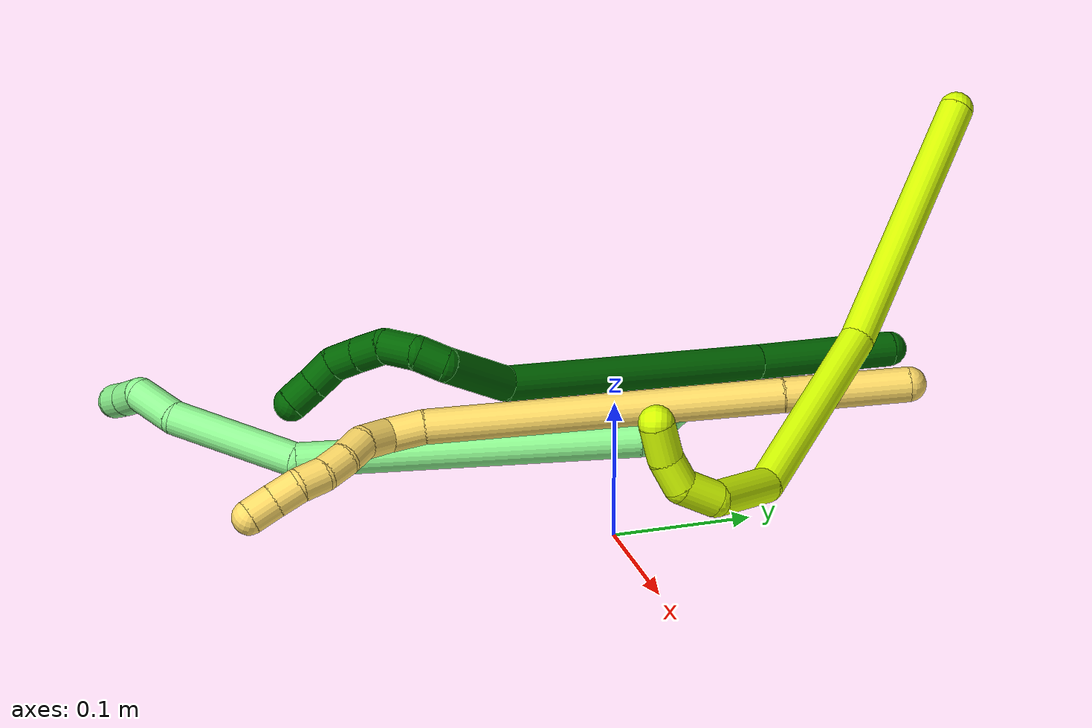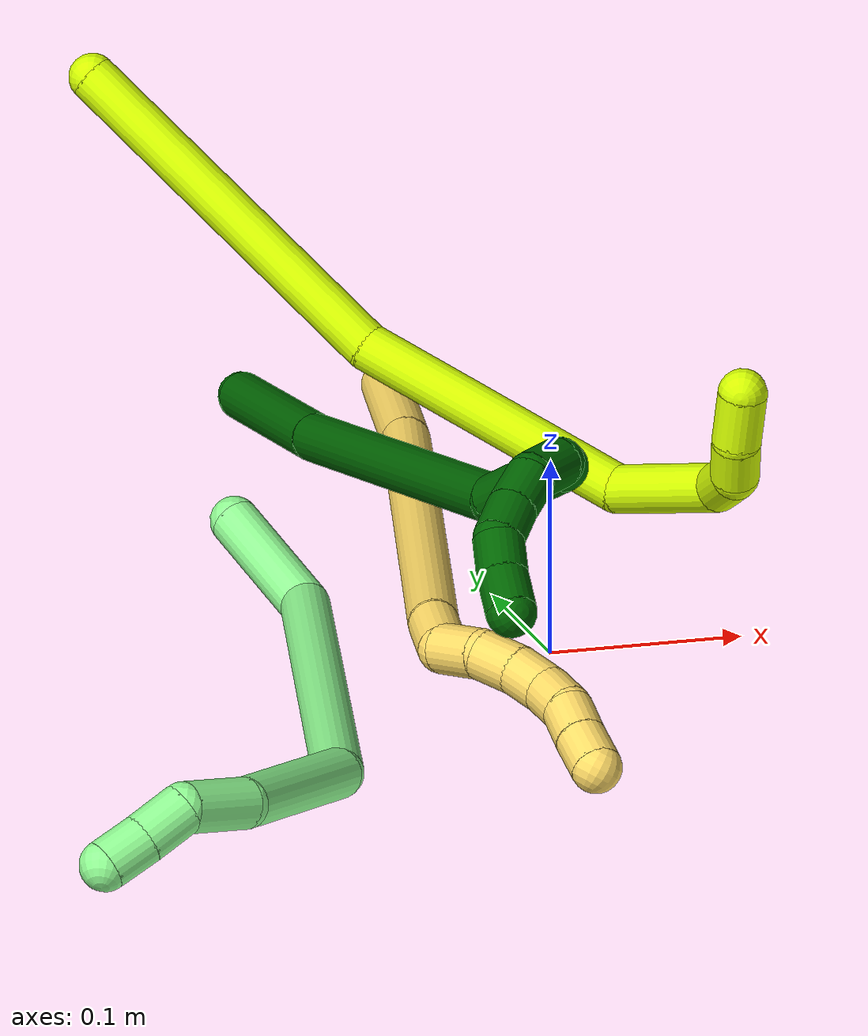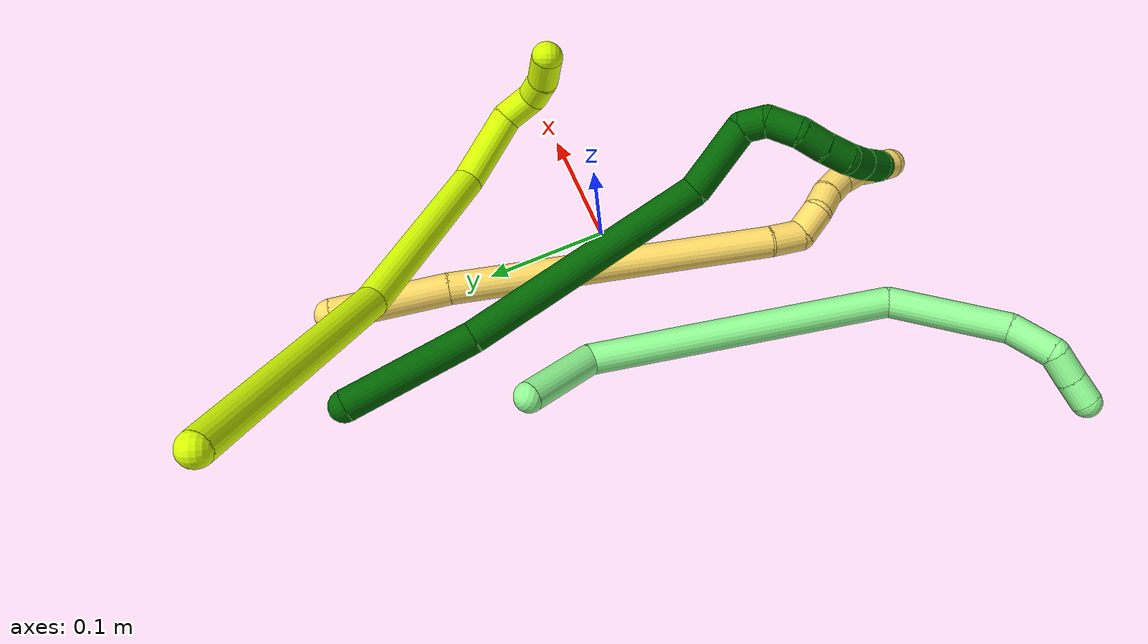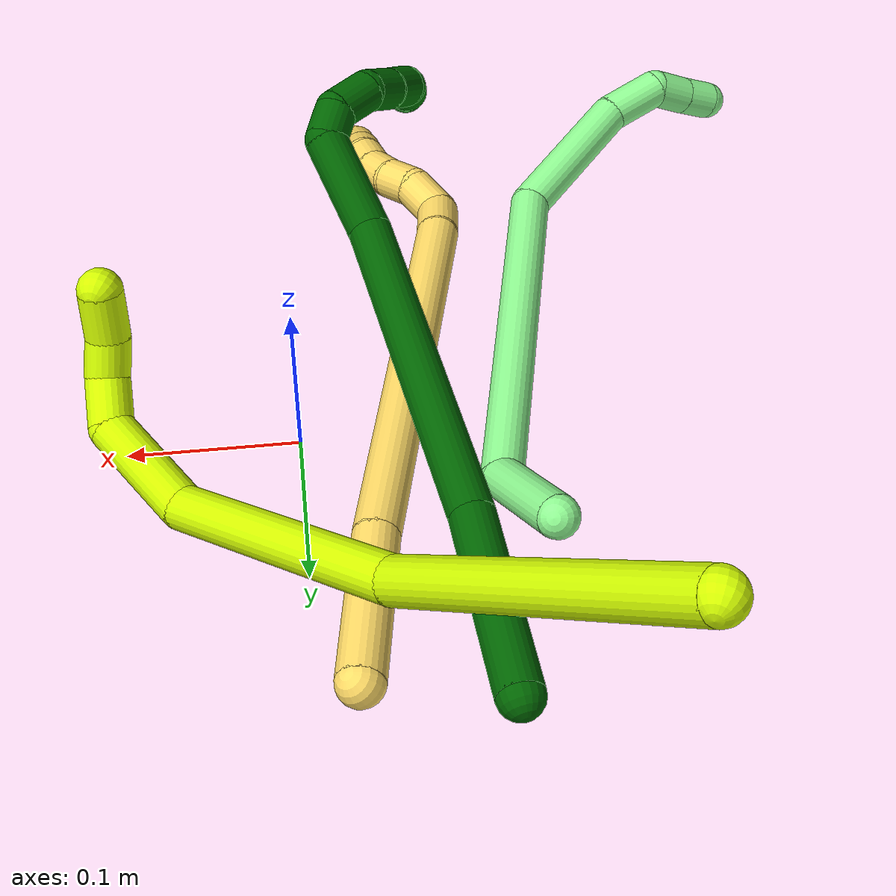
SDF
<sdf version="1.7">
 <world name="default">
  <model name="5">
   <static>0</static>
   <link name="5">
    <collision name="collision-cylinder-e_1_1_4">
     <pose>-0.018767 -0.039751 0.010308 1.31706 -0.428666 -0.333725</pose>
     <geometry><cylinder><radius>0.0125</radius><length>0.090302</length></cylinder></geometry>
     <surface>
      <friction><ode><mu>1.16</mu><mu2>1.16</mu2><slip1>0</slip1><slip2>0</slip2></ode></friction>
      <contact><ode><kp>1e+06</kp><kd>1</kd><max_vel>0</max_vel><min_depth>0.001</min_depth></ode></contact>
     </surface>
    </collision>
    <visual name="visual-cylinder-e_1_1_4">
     <pose>-0.018767 -0.039751 0.010308 1.31706 -0.428666 -0.333725</pose>
     <geometry><cylinder><radius>0.0125</radius><length>0.090302</length></cylinder></geometry>
     <material><ambient>1 0.858824 0.4 1</ambient></material>
    </visual>
    <collision name="collision-cylinder-e_2_4_5">
     <pose>-0.084832 -0.191981 0.056956 1.25831 -0.380624 -0.278603</pose>
     <geometry><cylinder><radius>0.0125</radius><length>0.25463</length></cylinder></geometry>
     <surface>
      <friction><ode><mu>1.16</mu><mu2>1.16</mu2><slip1>0</slip1><slip2>0</slip2></ode></friction>
      <contact><ode><kp>1e+06</kp><kd>1</kd><max_vel>0</max_vel><min_depth>0.001</min_depth></ode></contact>
     </surface>
    </collision>
    <visual name="visual-cylinder-e_2_4_5">
     <pose>-0.084832 -0.191981 0.056956 1.25831 -0.380624 -0.278603</pose>
     <geometry><cylinder><radius>0.0125</radius><length>0.25463</length></cylinder></geometry>
     <material><ambient>1 0.858824 0.4 1</ambient></material>
    </visual>
    <collision name="collision-cylinder-e_3_5_6">
     <pose>-0.138821 -0.315056 0.097425 1.19908 -0.531822 -0.368085</pose>
     <geometry><cylinder><radius>0.0125</radius><length>0.02639</length></cylinder></geometry>
     <surface>
      <friction><ode><mu>1.16</mu><mu2>1.16</mu2><slip1>0</slip1><slip2>0</slip2></ode></friction>
      <contact><ode><kp>1e+06</kp><kd>1</kd><max_vel>0</max_vel><min_depth>0.001</min_depth></ode></contact>
     </surface>
    </collision>
    <visual name="visual-cylinder-e_3_5_6">
     <pose>-0.138821 -0.315056 0.097425 1.19908 -0.531822 -0.368085</pose>
     <geometry><cylinder><radius>0.0125</radius><length>0.02639</length></cylinder></geometry>
     <material><ambient>1 0.858824 0.4 1</ambient></material>
    </visual>
    <collision name="collision-cylinder-e_4_6_7">
     <pose>-0.155671 -0.33287 0.098403 1.98261 -0.91123 -1.28538</pose>
     <geometry><cylinder><radius>0.0125</radius><length>0.025709</length></cylinder></geometry>
     <surface>
      <friction><ode><mu>1.16</mu><mu2>1.16</mu2><slip1>0</slip1><slip2>0</slip2></ode></friction>
      <contact><ode><kp>1e+06</kp><kd>1</kd><max_vel>0</max_vel><min_depth>0.001</min_depth></ode></contact>
     </surface>
    </collision>
    <visual name="visual-cylinder-e_4_6_7">
     <pose>-0.155671 -0.33287 0.098403 1.98261 -0.91123 -1.28538</pose>
     <geometry><cylinder><radius>0.0125</radius><length>0.025709</length></cylinder></geometry>
     <material><ambient>1 0.858824 0.4 1</ambient></material>
    </visual>
    <collision name="collision-cylinder-e_5_7_8">
     <pose>-0.176044 -0.343331 0.094551 1.78307 -1.25685 -1.46564</pose>
     <geometry><cylinder><radius>0.0125</radius><length>0.021481</length></cylinder></geometry>
     <surface>
      <friction><ode><mu>1.16</mu><mu2>1.16</mu2><slip1>0</slip1><slip2>0</slip2></ode></friction>
      <contact><ode><kp>1e+06</kp><kd>1</kd><max_vel>0</max_vel><min_depth>0.001</min_depth></ode></contact>
     </surface>
    </collision>
    <visual name="visual-cylinder-e_5_7_8">
     <pose>-0.176044 -0.343331 0.094551 1.78307 -1.25685 -1.46564</pose>
     <geometry><cylinder><radius>0.0125</radius><length>0.021481</length></cylinder></geometry>
     <material><ambient>1 0.858824 0.4 1</ambient></material>
    </visual>
    <collision name="collision-cylinder-e_6_8_9">
     <pose>-0.195462 -0.351118 0.094733 1.37947 -1.10466 -0.940682</pose>
     <geometry><cylinder><radius>0.0125</radius><length>0.020602</length></cylinder></geometry>
     <surface>
      <friction><ode><mu>1.16</mu><mu2>1.16</mu2><slip1>0</slip1><slip2>0</slip2></ode></friction>
      <contact><ode><kp>1e+06</kp><kd>1</kd><max_vel>0</max_vel><min_depth>0.001</min_depth></ode></contact>
     </surface>
    </collision>
    <visual name="visual-cylinder-e_6_8_9">
     <pose>-0.195462 -0.351118 0.094733 1.37947 -1.10466 -0.940682</pose>
     <geometry><cylinder><radius>0.0125</radius><length>0.020602</length></cylinder></geometry>
     <material><ambient>1 0.858824 0.4 1</ambient></material>
    </visual>
    <collision name="collision-cylinder-e_7_9_10">
     <pose>-0.21222 -0.36212 0.097298 1.31562 -0.847409 -0.670608</pose>
     <geometry><cylinder><radius>0.0125</radius><length>0.020162</length></cylinder></geometry>
     <surface>
      <friction><ode><mu>1.16</mu><mu2>1.16</mu2><slip1>0</slip1><slip2>0</slip2></ode></friction>
      <contact><ode><kp>1e+06</kp><kd>1</kd><max_vel>0</max_vel><min_depth>0.001</min_depth></ode></contact>
     </surface>
    </collision>
    <visual name="visual-cylinder-e_7_9_10">
     <pose>-0.21222 -0.36212 0.097298 1.31562 -0.847409 -0.670608</pose>
     <geometry><cylinder><radius>0.0125</radius><length>0.020162</length></cylinder></geometry>
     <material><ambient>1 0.858824 0.4 1</ambient></material>
    </visual>
    <collision name="collision-cylinder-e_8_10_11">
     <pose>-0.226746 -0.37436 0.103525 0.904944 -0.758513 -0.382736</pose>
     <geometry><cylinder><radius>0.0125</radius><length>0.020263</length></cylinder></geometry>
     <surface>
      <friction><ode><mu>1.16</mu><mu2>1.16</mu2><slip1>0</slip1><slip2>0</slip2></ode></friction>
      <contact><ode><kp>1e+06</kp><kd>1</kd><max_vel>0</max_vel><min_depth>0.001</min_depth></ode></contact>
     </surface>
    </collision>
    <visual name="visual-cylinder-e_8_10_11">
     <pose>-0.226746 -0.37436 0.103525 0.904944 -0.758513 -0.382736</pose>
     <geometry><cylinder><radius>0.0125</radius><length>0.020263</length></cylinder></geometry>
     <material><ambient>1 0.858824 0.4 1</ambient></material>
    </visual>
    <collision name="collision-cylinder-e_9_11_2">
     <pose>-0.241132 -0.385746 0.112341 0.919193 -0.811073 -0.418766</pose>
     <geometry><cylinder><radius>0.0125</radius><length>0.020461</length></cylinder></geometry>
     <surface>
      <friction><ode><mu>1.16</mu><mu2>1.16</mu2><slip1>0</slip1><slip2>0</slip2></ode></friction>
      <contact><ode><kp>1e+06</kp><kd>1</kd><max_vel>0</max_vel><min_depth>0.001</min_depth></ode></contact>
     </surface>
    </collision>
    <visual name="visual-cylinder-e_9_11_2">
     <pose>-0.241132 -0.385746 0.112341 0.919193 -0.811073 -0.418766</pose>
     <geometry><cylinder><radius>0.0125</radius><length>0.020461</length></cylinder></geometry>
     <material><ambient>1 0.858824 0.4 1</ambient></material>
    </visual>
    <collision name="collision-sphere-2">
     <pose>-0.248549 -0.391348 0.116614 0 -0 0</pose>
     <geometry><sphere><radius>0.0125</radius></sphere></geometry>
     <surface>
      <friction><ode><mu>1.16</mu><mu2>1.16</mu2><slip1>0</slip1><slip2>0</slip2></ode></friction>
      <contact><ode><kp>1e+06</kp><kd>1</kd><max_vel>0</max_vel><min_depth>0.001</min_depth></ode></contact>
     </surface>
    </collision>
    <visual name="visual-sphere-2">
     <pose>-0.248549 -0.391348 0.116614 0 -0 0</pose>
     <geometry><sphere><radius>0.0125</radius></sphere></geometry>
     <material><ambient>1 0.858824 0.4 1</ambient></material>
    </visual>
    <collision name="collision-sphere-11">
     <pose>-0.233715 -0.380144 0.108068 0 -0 0</pose>
     <geometry><sphere><radius>0.0125</radius></sphere></geometry>
     <surface>
      <friction><ode><mu>1.16</mu><mu2>1.16</mu2><slip1>0</slip1><slip2>0</slip2></ode></friction>
      <contact><ode><kp>1e+06</kp><kd>1</kd><max_vel>0</max_vel><min_depth>0.001</min_depth></ode></contact>
     </surface>
    </collision>
    <visual name="visual-sphere-11">
     <pose>-0.233715 -0.380144 0.108068 0 -0 0</pose>
     <geometry><sphere><radius>0.0125</radius></sphere></geometry>
     <material><ambient>1 0.858824 0.4 1</ambient></material>
    </visual>
    <collision name="collision-sphere-10">
     <pose>-0.219777 -0.368577 0.098982 0 -0 0</pose>
     <geometry><sphere><radius>0.0125</radius></sphere></geometry>
     <surface>
      <friction><ode><mu>1.16</mu><mu2>1.16</mu2><slip1>0</slip1><slip2>0</slip2></ode></friction>
      <contact><ode><kp>1e+06</kp><kd>1</kd><max_vel>0</max_vel><min_depth>0.001</min_depth></ode></contact>
     </surface>
    </collision>
    <visual name="visual-sphere-10">
     <pose>-0.219777 -0.368577 0.098982 0 -0 0</pose>
     <geometry><sphere><radius>0.0125</radius></sphere></geometry>
     <material><ambient>1 0.858824 0.4 1</ambient></material>
    </visual>
    <collision name="collision-sphere-9">
     <pose>-0.204664 -0.355664 0.095613 0 -0 0</pose>
     <geometry><sphere><radius>0.0125</radius></sphere></geometry>
     <surface>
      <friction><ode><mu>1.16</mu><mu2>1.16</mu2><slip1>0</slip1><slip2>0</slip2></ode></friction>
      <contact><ode><kp>1e+06</kp><kd>1</kd><max_vel>0</max_vel><min_depth>0.001</min_depth></ode></contact>
     </surface>
    </collision>
    <visual name="visual-sphere-9">
     <pose>-0.204664 -0.355664 0.095613 0 -0 0</pose>
     <geometry><sphere><radius>0.0125</radius></sphere></geometry>
     <material><ambient>1 0.858824 0.4 1</ambient></material>
    </visual>
    <collision name="collision-sphere-4">
     <pose>-0.037535 -0.079502 0.020616 0 -0 0</pose>
     <geometry><sphere><radius>0.0125</radius></sphere></geometry>
     <surface>
      <friction><ode><mu>1.16</mu><mu2>1.16</mu2><slip1>0</slip1><slip2>0</slip2></ode></friction>
      <contact><ode><kp>1e+06</kp><kd>1</kd><max_vel>0</max_vel><min_depth>0.001</min_depth></ode></contact>
     </surface>
    </collision>
    <visual name="visual-sphere-4">
     <pose>-0.037535 -0.079502 0.020616 0 -0 0</pose>
     <geometry><sphere><radius>0.0125</radius></sphere></geometry>
     <material><ambient>1 0.858824 0.4 1</ambient></material>
    </visual>
    <collision name="collision-sphere-1">
     <geometry><sphere><radius>0.0125</radius></sphere></geometry>
     <surface>
      <friction><ode><mu>1.16</mu><mu2>1.16</mu2><slip1>0</slip1><slip2>0</slip2></ode></friction>
      <contact><ode><kp>1e+06</kp><kd>1</kd><max_vel>0</max_vel><min_depth>0.001</min_depth></ode></contact>
     </surface>
    </collision>
    <visual name="visual-sphere-1">
     <geometry><sphere><radius>0.0125</radius></sphere></geometry>
     <material><ambient>1 0.858824 0.4 1</ambient></material>
    </visual>
    <collision name="collision-sphere-8">
     <pose>-0.18626 -0.346573 0.093853 0 -0 0</pose>
     <geometry><sphere><radius>0.0125</radius></sphere></geometry>
     <surface>
      <friction><ode><mu>1.16</mu><mu2>1.16</mu2><slip1>0</slip1><slip2>0</slip2></ode></friction>
      <contact><ode><kp>1e+06</kp><kd>1</kd><max_vel>0</max_vel><min_depth>0.001</min_depth></ode></contact>
     </surface>
    </collision>
    <visual name="visual-sphere-8">
     <pose>-0.18626 -0.346573 0.093853 0 -0 0</pose>
     <geometry><sphere><radius>0.0125</radius></sphere></geometry>
     <material><ambient>1 0.858824 0.4 1</ambient></material>
    </visual>
    <collision name="collision-sphere-5">
     <pose>-0.13213 -0.30446 0.093295 0 -0 0</pose>
     <geometry><sphere><radius>0.0125</radius></sphere></geometry>
     <surface>
      <friction><ode><mu>1.16</mu><mu2>1.16</mu2><slip1>0</slip1><slip2>0</slip2></ode></friction>
      <contact><ode><kp>1e+06</kp><kd>1</kd><max_vel>0</max_vel><min_depth>0.001</min_depth></ode></contact>
     </surface>
    </collision>
    <visual name="visual-sphere-5">
     <pose>-0.13213 -0.30446 0.093295 0 -0 0</pose>
     <geometry><sphere><radius>0.0125</radius></sphere></geometry>
     <material><ambient>1 0.858824 0.4 1</ambient></material>
    </visual>
    <collision name="collision-sphere-6">
     <pose>-0.145513 -0.325652 0.101556 0 -0 0</pose>
     <geometry><sphere><radius>0.0125</radius></sphere></geometry>
     <surface>
      <friction><ode><mu>1.16</mu><mu2>1.16</mu2><slip1>0</slip1><slip2>0</slip2></ode></friction>
      <contact><ode><kp>1e+06</kp><kd>1</kd><max_vel>0</max_vel><min_depth>0.001</min_depth></ode></contact>
     </surface>
    </collision>
    <visual name="visual-sphere-6">
     <pose>-0.145513 -0.325652 0.101556 0 -0 0</pose>
     <geometry><sphere><radius>0.0125</radius></sphere></geometry>
     <material><ambient>1 0.858824 0.4 1</ambient></material>
    </visual>
    <collision name="collision-sphere-7">
     <pose>-0.165829 -0.340089 0.09525 0 -0 0</pose>
     <geometry><sphere><radius>0.0125</radius></sphere></geometry>
     <surface>
      <friction><ode><mu>1.16</mu><mu2>1.16</mu2><slip1>0</slip1><slip2>0</slip2></ode></friction>
      <contact><ode><kp>1e+06</kp><kd>1</kd><max_vel>0</max_vel><min_depth>0.001</min_depth></ode></contact>
     </surface>
    </collision>
    <visual name="visual-sphere-7">
     <pose>-0.165829 -0.340089 0.09525 0 -0 0</pose>
     <geometry><sphere><radius>0.0125</radius></sphere></geometry>
     <material><ambient>1 0.858824 0.4 1</ambient></material>
    </visual>
    <inertial>
     <pose>-0.105154 -0.213468 0.06175 0 -0 0</pose>
     <mass>0.5</mass>
     <inertia>
      <ixx>0.000901</ixx>
      <ixy>0</ixy>
      <ixz>0</ixz>
      <iyy>0.000169</iyy>
      <iyz>0</iyz>
      <izz>0.001849</izz>
     </inertia>
    </inertial>
   </link>
   <pose>-0.020472 0.22538 0.077438 -2.73564 -0.3995 2.52712</pose>
  </model>
  <model name="6">
   <static>0</static>
   <link name="6">
    <collision name="collision-cylinder-e_1_1_4">
     <pose>0.012757 -0.003194 0.050807 0.062777 0.245536 0.007748</pose>
     <geometry><cylinder><radius>0.0125</radius><length>0.104963</length></cylinder></geometry>
     <surface>
      <friction><ode><mu>1.16</mu><mu2>1.16</mu2><slip1>0</slip1><slip2>0</slip2></ode></friction>
      <contact><ode><kp>1e+06</kp><kd>1</kd><max_vel>0</max_vel><min_depth>0.001</min_depth></ode></contact>
     </surface>
    </collision>
    <visual name="visual-cylinder-e_1_1_4">
     <pose>0.012757 -0.003194 0.050807 0.062777 0.245536 0.007748</pose>
     <geometry><cylinder><radius>0.0125</radius><length>0.104963</length></cylinder></geometry>
     <material><ambient>0 0.392157 0.003922 1</ambient></material>
    </visual>
    <collision name="collision-cylinder-e_2_4_5">
     <pose>0.044854 -0.004717 0.200811 -0.016834 0.192524 -0.001626</pose>
     <geometry><cylinder><radius>0.0125</radius><length>0.202157</length></cylinder></geometry>
     <surface>
      <friction><ode><mu>1.16</mu><mu2>1.16</mu2><slip1>0</slip1><slip2>0</slip2></ode></friction>
      <contact><ode><kp>1e+06</kp><kd>1</kd><max_vel>0</max_vel><min_depth>0.001</min_depth></ode></contact>
     </surface>
    </collision>
    <visual name="visual-cylinder-e_2_4_5">
     <pose>0.044854 -0.004717 0.200811 -0.016834 0.192524 -0.001626</pose>
     <geometry><cylinder><radius>0.0125</radius><length>0.202157</length></cylinder></geometry>
     <material><ambient>0 0.392157 0.003922 1</ambient></material>
    </visual>
    <collision name="collision-cylinder-e_3_5_6">
     <pose>0.057712 0.002513 0.329209 -0.188154 -0.214719 0.020337</pose>
     <geometry><cylinder><radius>0.0125</radius><length>0.060848</length></cylinder></geometry>
     <surface>
      <friction><ode><mu>1.16</mu><mu2>1.16</mu2><slip1>0</slip1><slip2>0</slip2></ode></friction>
      <contact><ode><kp>1e+06</kp><kd>1</kd><max_vel>0</max_vel><min_depth>0.001</min_depth></ode></contact>
     </surface>
    </collision>
    <visual name="visual-cylinder-e_3_5_6">
     <pose>0.057712 0.002513 0.329209 -0.188154 -0.214719 0.020337</pose>
     <geometry><cylinder><radius>0.0125</radius><length>0.060848</length></cylinder></geometry>
     <material><ambient>0 0.392157 0.003922 1</ambient></material>
    </visual>
    <collision name="collision-cylinder-e_4_6_7">
     <pose>0.050324 0.002866 0.367304 0.529611 -0.087571 -0.023761</pose>
     <geometry><cylinder><radius>0.0125</radius><length>0.020692</length></cylinder></geometry>
     <surface>
      <friction><ode><mu>1.16</mu><mu2>1.16</mu2><slip1>0</slip1><slip2>0</slip2></ode></friction>
      <contact><ode><kp>1e+06</kp><kd>1</kd><max_vel>0</max_vel><min_depth>0.001</min_depth></ode></contact>
     </surface>
    </collision>
    <visual name="visual-cylinder-e_4_6_7">
     <pose>0.050324 0.002866 0.367304 0.529611 -0.087571 -0.023761</pose>
     <geometry><cylinder><radius>0.0125</radius><length>0.020692</length></cylinder></geometry>
     <material><ambient>0 0.392157 0.003922 1</ambient></material>
    </visual>
    <collision name="collision-cylinder-e_5_7_8">
     <pose>0.052536 -0.013262 0.382983 1.01489 0.237796 0.132648</pose>
     <geometry><cylinder><radius>0.0125</radius><length>0.026459</length></cylinder></geometry>
     <surface>
      <friction><ode><mu>1.16</mu><mu2>1.16</mu2><slip1>0</slip1><slip2>0</slip2></ode></friction>
      <contact><ode><kp>1e+06</kp><kd>1</kd><max_vel>0</max_vel><min_depth>0.001</min_depth></ode></contact>
     </surface>
    </collision>
    <visual name="visual-cylinder-e_5_7_8">
     <pose>0.052536 -0.013262 0.382983 1.01489 0.237796 0.132648</pose>
     <geometry><cylinder><radius>0.0125</radius><length>0.026459</length></cylinder></geometry>
     <material><ambient>0 0.392157 0.003922 1</ambient></material>
    </visual>
    <collision name="collision-cylinder-e_6_8_9">
     <pose>0.06286 -0.031729 0.393962 1.06349 0.69564 0.420263</pose>
     <geometry><cylinder><radius>0.0125</radius><length>0.022493</length></cylinder></geometry>
     <surface>
      <friction><ode><mu>1.16</mu><mu2>1.16</mu2><slip1>0</slip1><slip2>0</slip2></ode></friction>
      <contact><ode><kp>1e+06</kp><kd>1</kd><max_vel>0</max_vel><min_depth>0.001</min_depth></ode></contact>
     </surface>
    </collision>
    <visual name="visual-cylinder-e_6_8_9">
     <pose>0.06286 -0.031729 0.393962 1.06349 0.69564 0.420263</pose>
     <geometry><cylinder><radius>0.0125</radius><length>0.022493</length></cylinder></geometry>
     <material><ambient>0 0.392157 0.003922 1</ambient></material>
    </visual>
    <collision name="collision-cylinder-e_7_9_10">
     <pose>0.077275 -0.045759 0.40299 0.930195 0.727931 0.377761</pose>
     <geometry><cylinder><radius>0.0125</radius><length>0.021664</length></cylinder></geometry>
     <surface>
      <friction><ode><mu>1.16</mu><mu2>1.16</mu2><slip1>0</slip1><slip2>0</slip2></ode></friction>
      <contact><ode><kp>1e+06</kp><kd>1</kd><max_vel>0</max_vel><min_depth>0.001</min_depth></ode></contact>
     </surface>
    </collision>
    <visual name="visual-cylinder-e_7_9_10">
     <pose>0.077275 -0.045759 0.40299 0.930195 0.727931 0.377761</pose>
     <geometry><cylinder><radius>0.0125</radius><length>0.021664</length></cylinder></geometry>
     <material><ambient>0 0.392157 0.003922 1</ambient></material>
    </visual>
    <collision name="collision-cylinder-e_8_10_11">
     <pose>0.093395 -0.053844 0.41225 0.347111 1.08493 0.210579</pose>
     <geometry><cylinder><radius>0.0125</radius><length>0.020161</length></cylinder></geometry>
     <surface>
      <friction><ode><mu>1.16</mu><mu2>1.16</mu2><slip1>0</slip1><slip2>0</slip2></ode></friction>
      <contact><ode><kp>1e+06</kp><kd>1</kd><max_vel>0</max_vel><min_depth>0.001</min_depth></ode></contact>
     </surface>
    </collision>
    <visual name="visual-cylinder-e_8_10_11">
     <pose>0.093395 -0.053844 0.41225 0.347111 1.08493 0.210579</pose>
     <geometry><cylinder><radius>0.0125</radius><length>0.020161</length></cylinder></geometry>
     <material><ambient>0 0.392157 0.003922 1</ambient></material>
    </visual>
    <collision name="collision-cylinder-e_9_11_2">
     <pose>0.110931 -0.056439 0.422188 0.178345 0.994701 0.096999</pose>
     <geometry><cylinder><radius>0.0125</radius><length>0.020563</length></cylinder></geometry>
     <surface>
      <friction><ode><mu>1.16</mu><mu2>1.16</mu2><slip1>0</slip1><slip2>0</slip2></ode></friction>
      <contact><ode><kp>1e+06</kp><kd>1</kd><max_vel>0</max_vel><min_depth>0.001</min_depth></ode></contact>
     </surface>
    </collision>
    <visual name="visual-cylinder-e_9_11_2">
     <pose>0.110931 -0.056439 0.422188 0.178345 0.994701 0.096999</pose>
     <geometry><cylinder><radius>0.0125</radius><length>0.020563</length></cylinder></geometry>
     <material><ambient>0 0.392157 0.003922 1</ambient></material>
    </visual>
    <collision name="collision-sphere-2">
     <pose>0.119553 -0.057432 0.4277 0 -0 0</pose>
     <geometry><sphere><radius>0.0125</radius></sphere></geometry>
     <surface>
      <friction><ode><mu>1.16</mu><mu2>1.16</mu2><slip1>0</slip1><slip2>0</slip2></ode></friction>
      <contact><ode><kp>1e+06</kp><kd>1</kd><max_vel>0</max_vel><min_depth>0.001</min_depth></ode></contact>
     </surface>
    </collision>
    <visual name="visual-sphere-2">
     <pose>0.119553 -0.057432 0.4277 0 -0 0</pose>
     <geometry><sphere><radius>0.0125</radius></sphere></geometry>
     <material><ambient>0 0.392157 0.003922 1</ambient></material>
    </visual>
    <collision name="collision-sphere-11">
     <pose>0.102309 -0.055445 0.416676 0 -0 0</pose>
     <geometry><sphere><radius>0.0125</radius></sphere></geometry>
     <surface>
      <friction><ode><mu>1.16</mu><mu2>1.16</mu2><slip1>0</slip1><slip2>0</slip2></ode></friction>
      <contact><ode><kp>1e+06</kp><kd>1</kd><max_vel>0</max_vel><min_depth>0.001</min_depth></ode></contact>
     </surface>
    </collision>
    <visual name="visual-sphere-11">
     <pose>0.102309 -0.055445 0.416676 0 -0 0</pose>
     <geometry><sphere><radius>0.0125</radius></sphere></geometry>
     <material><ambient>0 0.392157 0.003922 1</ambient></material>
    </visual>
    <collision name="collision-sphere-10">
     <pose>0.084481 -0.052242 0.407823 0 -0 0</pose>
     <geometry><sphere><radius>0.0125</radius></sphere></geometry>
     <surface>
      <friction><ode><mu>1.16</mu><mu2>1.16</mu2><slip1>0</slip1><slip2>0</slip2></ode></friction>
      <contact><ode><kp>1e+06</kp><kd>1</kd><max_vel>0</max_vel><min_depth>0.001</min_depth></ode></contact>
     </surface>
    </collision>
    <visual name="visual-sphere-10">
     <pose>0.084481 -0.052242 0.407823 0 -0 0</pose>
     <geometry><sphere><radius>0.0125</radius></sphere></geometry>
     <material><ambient>0 0.392157 0.003922 1</ambient></material>
    </visual>
    <collision name="collision-sphere-9">
     <pose>0.070068 -0.039275 0.398157 0 -0 0</pose>
     <geometry><sphere><radius>0.0125</radius></sphere></geometry>
     <surface>
      <friction><ode><mu>1.16</mu><mu2>1.16</mu2><slip1>0</slip1><slip2>0</slip2></ode></friction>
      <contact><ode><kp>1e+06</kp><kd>1</kd><max_vel>0</max_vel><min_depth>0.001</min_depth></ode></contact>
     </surface>
    </collision>
    <visual name="visual-sphere-9">
     <pose>0.070068 -0.039275 0.398157 0 -0 0</pose>
     <geometry><sphere><radius>0.0125</radius></sphere></geometry>
     <material><ambient>0 0.392157 0.003922 1</ambient></material>
    </visual>
    <collision name="collision-sphere-4">
     <pose>0.025514 -0.006387 0.101615 0 -0 0</pose>
     <geometry><sphere><radius>0.0125</radius></sphere></geometry>
     <surface>
      <friction><ode><mu>1.16</mu><mu2>1.16</mu2><slip1>0</slip1><slip2>0</slip2></ode></friction>
      <contact><ode><kp>1e+06</kp><kd>1</kd><max_vel>0</max_vel><min_depth>0.001</min_depth></ode></contact>
     </surface>
    </collision>
    <visual name="visual-sphere-4">
     <pose>0.025514 -0.006387 0.101615 0 -0 0</pose>
     <geometry><sphere><radius>0.0125</radius></sphere></geometry>
     <material><ambient>0 0.392157 0.003922 1</ambient></material>
    </visual>
    <collision name="collision-sphere-1">
     <geometry><sphere><radius>0.0125</radius></sphere></geometry>
     <surface>
      <friction><ode><mu>1.16</mu><mu2>1.16</mu2><slip1>0</slip1><slip2>0</slip2></ode></friction>
      <contact><ode><kp>1e+06</kp><kd>1</kd><max_vel>0</max_vel><min_depth>0.001</min_depth></ode></contact>
     </surface>
    </collision>
    <visual name="visual-sphere-1">
     <geometry><sphere><radius>0.0125</radius></sphere></geometry>
     <material><ambient>0 0.392157 0.003922 1</ambient></material>
    </visual>
    <collision name="collision-sphere-8">
     <pose>0.055652 -0.024183 0.389768 0 -0 0</pose>
     <geometry><sphere><radius>0.0125</radius></sphere></geometry>
     <surface>
      <friction><ode><mu>1.16</mu><mu2>1.16</mu2><slip1>0</slip1><slip2>0</slip2></ode></friction>
      <contact><ode><kp>1e+06</kp><kd>1</kd><max_vel>0</max_vel><min_depth>0.001</min_depth></ode></contact>
     </surface>
    </collision>
    <visual name="visual-sphere-8">
     <pose>0.055652 -0.024183 0.389768 0 -0 0</pose>
     <geometry><sphere><radius>0.0125</radius></sphere></geometry>
     <material><ambient>0 0.392157 0.003922 1</ambient></material>
    </visual>
    <collision name="collision-sphere-5">
     <pose>0.064194 -0.003047 0.300008 0 -0 0</pose>
     <geometry><sphere><radius>0.0125</radius></sphere></geometry>
     <surface>
      <friction><ode><mu>1.16</mu><mu2>1.16</mu2><slip1>0</slip1><slip2>0</slip2></ode></friction>
      <contact><ode><kp>1e+06</kp><kd>1</kd><max_vel>0</max_vel><min_depth>0.001</min_depth></ode></contact>
     </surface>
    </collision>
    <visual name="visual-sphere-5">
     <pose>0.064194 -0.003047 0.300008 0 -0 0</pose>
     <geometry><sphere><radius>0.0125</radius></sphere></geometry>
     <material><ambient>0 0.392157 0.003922 1</ambient></material>
    </visual>
    <collision name="collision-sphere-6">
     <pose>0.051229 0.008073 0.358409 0 -0 0</pose>
     <geometry><sphere><radius>0.0125</radius></sphere></geometry>
     <surface>
      <friction><ode><mu>1.16</mu><mu2>1.16</mu2><slip1>0</slip1><slip2>0</slip2></ode></friction>
      <contact><ode><kp>1e+06</kp><kd>1</kd><max_vel>0</max_vel><min_depth>0.001</min_depth></ode></contact>
     </surface>
    </collision>
    <visual name="visual-sphere-6">
     <pose>0.051229 0.008073 0.358409 0 -0 0</pose>
     <geometry><sphere><radius>0.0125</radius></sphere></geometry>
     <material><ambient>0 0.392157 0.003922 1</ambient></material>
    </visual>
    <collision name="collision-sphere-7">
     <pose>0.04942 -0.002341 0.376198 0 -0 0</pose>
     <geometry><sphere><radius>0.0125</radius></sphere></geometry>
     <surface>
      <friction><ode><mu>1.16</mu><mu2>1.16</mu2><slip1>0</slip1><slip2>0</slip2></ode></friction>
      <contact><ode><kp>1e+06</kp><kd>1</kd><max_vel>0</max_vel><min_depth>0.001</min_depth></ode></contact>
     </surface>
    </collision>
    <visual name="visual-sphere-7">
     <pose>0.04942 -0.002341 0.376198 0 -0 0</pose>
     <geometry><sphere><radius>0.0125</radius></sphere></geometry>
     <material><ambient>0 0.392157 0.003922 1</ambient></material>
    </visual>
    <inertial>
     <pose>0.047203 -0.010757 0.236556 0 -0 0</pose>
     <mass>0.5</mass>
     <inertia>
      <ixx>0.000821</ixx>
      <ixy>0</ixy>
      <ixz>0</ixz>
      <iyy>0.000823</iyy>
      <iyz>0</iyz>
      <izz>-0.000129</izz>
     </inertia>
    </inertial>
   </link>
   <pose>-0.093292 0.23797 0.073629 -0.220079 1.25723 -1.63068</pose>
  </model>
  <model name="13">
   <static>0</static>
   <link name="13">
    <collision name="collision-cylinder-e_1_1_4">
     <pose>-0.021169 0.005027 0.02513 -0.197449 -0.690398 0.071204</pose>
     <geometry><cylinder><radius>0.0125</radius><length>0.066481</length></cylinder></geometry>
     <surface>
      <friction><ode><mu>1.16</mu><mu2>1.16</mu2><slip1>0</slip1><slip2>0</slip2></ode></friction>
      <contact><ode><kp>1e+06</kp><kd>1</kd><max_vel>0</max_vel><min_depth>0.001</min_depth></ode></contact>
     </surface>
    </collision>
    <visual name="visual-cylinder-e_1_1_4">
     <pose>-0.021169 0.005027 0.02513 -0.197449 -0.690398 0.071204</pose>
     <geometry><cylinder><radius>0.0125</radius><length>0.066481</length></cylinder></geometry>
     <material><ambient>0.564706 0.984314 0.572549 1</ambient></material>
    </visual>
    <collision name="collision-cylinder-e_2_4_5">
     <pose>-0.098043 -0.052842 0.141857 0.601727 -0.464718 -0.146583</pose>
     <geometry><cylinder><radius>0.0125</radius><length>0.248587</length></cylinder></geometry>
     <surface>
      <friction><ode><mu>1.16</mu><mu2>1.16</mu2><slip1>0</slip1><slip2>0</slip2></ode></friction>
      <contact><ode><kp>1e+06</kp><kd>1</kd><max_vel>0</max_vel><min_depth>0.001</min_depth></ode></contact>
     </surface>
    </collision>
    <visual name="visual-cylinder-e_2_4_5">
     <pose>-0.098043 -0.052842 0.141857 0.601727 -0.464718 -0.146583</pose>
     <geometry><cylinder><radius>0.0125</radius><length>0.248587</length></cylinder></geometry>
     <material><ambient>0.564706 0.984314 0.572549 1</ambient></material>
    </visual>
    <collision name="collision-cylinder-e_3_5_6">
     <pose>-0.154016 -0.155324 0.263404 0.923069 -0.0054 -0.002686</pose>
     <geometry><cylinder><radius>0.0125</radius><length>0.099281</length></cylinder></geometry>
     <surface>
      <friction><ode><mu>1.16</mu><mu2>1.16</mu2><slip1>0</slip1><slip2>0</slip2></ode></friction>
      <contact><ode><kp>1e+06</kp><kd>1</kd><max_vel>0</max_vel><min_depth>0.001</min_depth></ode></contact>
     </surface>
    </collision>
    <visual name="visual-cylinder-e_3_5_6">
     <pose>-0.154016 -0.155324 0.263404 0.923069 -0.0054 -0.002686</pose>
     <geometry><cylinder><radius>0.0125</radius><length>0.099281</length></cylinder></geometry>
     <material><ambient>0.564706 0.984314 0.572549 1</ambient></material>
    </visual>
    <collision name="collision-cylinder-e_4_6_7">
     <pose>-0.147958 -0.210812 0.302388 1.05422 0.333006 0.195015</pose>
     <geometry><cylinder><radius>0.0125</radius><length>0.038703</length></cylinder></geometry>
     <surface>
      <friction><ode><mu>1.16</mu><mu2>1.16</mu2><slip1>0</slip1><slip2>0</slip2></ode></friction>
      <contact><ode><kp>1e+06</kp><kd>1</kd><max_vel>0</max_vel><min_depth>0.001</min_depth></ode></contact>
     </surface>
    </collision>
    <visual name="visual-cylinder-e_4_6_7">
     <pose>-0.147958 -0.210812 0.302388 1.05422 0.333006 0.195015</pose>
     <geometry><cylinder><radius>0.0125</radius><length>0.038703</length></cylinder></geometry>
     <material><ambient>0.564706 0.984314 0.572549 1</ambient></material>
    </visual>
    <collision name="collision-cylinder-e_5_7_8">
     <pose>-0.133911 -0.230201 0.320538 0.365381 0.66917 0.128283</pose>
     <geometry><cylinder><radius>0.0125</radius><length>0.024893</length></cylinder></geometry>
     <surface>
      <friction><ode><mu>1.16</mu><mu2>1.16</mu2><slip1>0</slip1><slip2>0</slip2></ode></friction>
      <contact><ode><kp>1e+06</kp><kd>1</kd><max_vel>0</max_vel><min_depth>0.001</min_depth></ode></contact>
     </surface>
    </collision>
    <visual name="visual-cylinder-e_5_7_8">
     <pose>-0.133911 -0.230201 0.320538 0.365381 0.66917 0.128283</pose>
     <geometry><cylinder><radius>0.0125</radius><length>0.024893</length></cylinder></geometry>
     <material><ambient>0.564706 0.984314 0.572549 1</ambient></material>
    </visual>
    <collision name="collision-cylinder-e_6_8_2">
     <pose>-0.119345 -0.23726 0.33753 0.425722 0.669662 0.150118</pose>
     <geometry><cylinder><radius>0.0125</radius><length>0.022056</length></cylinder></geometry>
     <surface>
      <friction><ode><mu>1.16</mu><mu2>1.16</mu2><slip1>0</slip1><slip2>0</slip2></ode></friction>
      <contact><ode><kp>1e+06</kp><kd>1</kd><max_vel>0</max_vel><min_depth>0.001</min_depth></ode></contact>
     </surface>
    </collision>
    <visual name="visual-cylinder-e_6_8_2">
     <pose>-0.119345 -0.23726 0.33753 0.425722 0.669662 0.150118</pose>
     <geometry><cylinder><radius>0.0125</radius><length>0.022056</length></cylinder></geometry>
     <material><ambient>0.564706 0.984314 0.572549 1</ambient></material>
    </visual>
    <collision name="collision-sphere-2">
     <pose>-0.1125 -0.240831 0.345405 0 -0 0</pose>
     <geometry><sphere><radius>0.0125</radius></sphere></geometry>
     <surface>
      <friction><ode><mu>1.16</mu><mu2>1.16</mu2><slip1>0</slip1><slip2>0</slip2></ode></friction>
      <contact><ode><kp>1e+06</kp><kd>1</kd><max_vel>0</max_vel><min_depth>0.001</min_depth></ode></contact>
     </surface>
    </collision>
    <visual name="visual-sphere-2">
     <pose>-0.1125 -0.240831 0.345405 0 -0 0</pose>
     <geometry><sphere><radius>0.0125</radius></sphere></geometry>
     <material><ambient>0.564706 0.984314 0.572549 1</ambient></material>
    </visual>
    <collision name="collision-sphere-4">
     <pose>-0.042338 0.010055 0.05026 0 -0 0</pose>
     <geometry><sphere><radius>0.0125</radius></sphere></geometry>
     <surface>
      <friction><ode><mu>1.16</mu><mu2>1.16</mu2><slip1>0</slip1><slip2>0</slip2></ode></friction>
      <contact><ode><kp>1e+06</kp><kd>1</kd><max_vel>0</max_vel><min_depth>0.001</min_depth></ode></contact>
     </surface>
    </collision>
    <visual name="visual-sphere-4">
     <pose>-0.042338 0.010055 0.05026 0 -0 0</pose>
     <geometry><sphere><radius>0.0125</radius></sphere></geometry>
     <material><ambient>0.564706 0.984314 0.572549 1</ambient></material>
    </visual>
    <collision name="collision-sphere-1">
     <geometry><sphere><radius>0.0125</radius></sphere></geometry>
     <surface>
      <friction><ode><mu>1.16</mu><mu2>1.16</mu2><slip1>0</slip1><slip2>0</slip2></ode></friction>
      <contact><ode><kp>1e+06</kp><kd>1</kd><max_vel>0</max_vel><min_depth>0.001</min_depth></ode></contact>
     </surface>
    </collision>
    <visual name="visual-sphere-1">
     <geometry><sphere><radius>0.0125</radius></sphere></geometry>
     <material><ambient>0.564706 0.984314 0.572549 1</ambient></material>
    </visual>
    <collision name="collision-sphere-8">
     <pose>-0.126191 -0.23369 0.329656 0 -0 0</pose>
     <geometry><sphere><radius>0.0125</radius></sphere></geometry>
     <surface>
      <friction><ode><mu>1.16</mu><mu2>1.16</mu2><slip1>0</slip1><slip2>0</slip2></ode></friction>
      <contact><ode><kp>1e+06</kp><kd>1</kd><max_vel>0</max_vel><min_depth>0.001</min_depth></ode></contact>
     </surface>
    </collision>
    <visual name="visual-sphere-8">
     <pose>-0.126191 -0.23369 0.329656 0 -0 0</pose>
     <geometry><sphere><radius>0.0125</radius></sphere></geometry>
     <material><ambient>0.564706 0.984314 0.572549 1</ambient></material>
    </visual>
    <collision name="collision-sphere-5">
     <pose>-0.153747 -0.115739 0.233453 0 -0 0</pose>
     <geometry><sphere><radius>0.0125</radius></sphere></geometry>
     <surface>
      <friction><ode><mu>1.16</mu><mu2>1.16</mu2><slip1>0</slip1><slip2>0</slip2></ode></friction>
      <contact><ode><kp>1e+06</kp><kd>1</kd><max_vel>0</max_vel><min_depth>0.001</min_depth></ode></contact>
     </surface>
    </collision>
    <visual name="visual-sphere-5">
     <pose>-0.153747 -0.115739 0.233453 0 -0 0</pose>
     <geometry><sphere><radius>0.0125</radius></sphere></geometry>
     <material><ambient>0.564706 0.984314 0.572549 1</ambient></material>
    </visual>
    <collision name="collision-sphere-6">
     <pose>-0.154284 -0.19491 0.293355 0 -0 0</pose>
     <geometry><sphere><radius>0.0125</radius></sphere></geometry>
     <surface>
      <friction><ode><mu>1.16</mu><mu2>1.16</mu2><slip1>0</slip1><slip2>0</slip2></ode></friction>
      <contact><ode><kp>1e+06</kp><kd>1</kd><max_vel>0</max_vel><min_depth>0.001</min_depth></ode></contact>
     </surface>
    </collision>
    <visual name="visual-sphere-6">
     <pose>-0.154284 -0.19491 0.293355 0 -0 0</pose>
     <geometry><sphere><radius>0.0125</radius></sphere></geometry>
     <material><ambient>0.564706 0.984314 0.572549 1</ambient></material>
    </visual>
    <collision name="collision-sphere-7">
     <pose>-0.141632 -0.226713 0.31142 0 -0 0</pose>
     <geometry><sphere><radius>0.0125</radius></sphere></geometry>
     <surface>
      <friction><ode><mu>1.16</mu><mu2>1.16</mu2><slip1>0</slip1><slip2>0</slip2></ode></friction>
      <contact><ode><kp>1e+06</kp><kd>1</kd><max_vel>0</max_vel><min_depth>0.001</min_depth></ode></contact>
     </surface>
    </collision>
    <visual name="visual-sphere-7">
     <pose>-0.141632 -0.226713 0.31142 0 -0 0</pose>
     <geometry><sphere><radius>0.0125</radius></sphere></geometry>
     <material><ambient>0.564706 0.984314 0.572549 1</ambient></material>
    </visual>
    <inertial>
     <pose>-0.105525 -0.094689 0.180424 0 -0 0</pose>
     <mass>0.5</mass>
     <inertia>
      <ixx>0.001082</ixx>
      <ixy>0</ixy>
      <ixz>0</ixz>
      <iyy>0.001001</iyy>
      <iyz>0</iyz>
      <izz>0.001341</izz>
     </inertia>
    </inertial>
   </link>
   <pose>-0.131961 0.111193 0.047316 -2.34168 0.275144 2.44097</pose>
  </model>
  <model name="15">
   <static>0</static>
   <link name="15">
    <collision name="collision-cylinder-e_1_1_4">
     <pose>0.095034 -0.010179 -0.033578 2.84726 1.21712 2.72234</pose>
     <geometry><cylinder><radius>0.0125</radius><length>0.202609</length></cylinder></geometry>
     <surface>
      <friction><ode><mu>1.16</mu><mu2>1.16</mu2><slip1>0</slip1><slip2>0</slip2></ode></friction>
      <contact><ode><kp>1e+06</kp><kd>1</kd><max_vel>0</max_vel><min_depth>0.001</min_depth></ode></contact>
     </surface>
    </collision>
    <visual name="visual-cylinder-e_1_1_4">
     <pose>0.095034 -0.010179 -0.033578 2.84726 1.21712 2.72234</pose>
     <geometry><cylinder><radius>0.0125</radius><length>0.202609</length></cylinder></geometry>
     <material><ambient>0.835294 1 0 1</ambient></material>
    </visual>
    <collision name="collision-cylinder-e_2_4_5">
     <pose>0.255866 -0.048421 -0.096626 2.38065 1.01689 1.89665</pose>
     <geometry><cylinder><radius>0.0125</radius><length>0.154731</length></cylinder></geometry>
     <surface>
      <friction><ode><mu>1.16</mu><mu2>1.16</mu2><slip1>0</slip1><slip2>0</slip2></ode></friction>
      <contact><ode><kp>1e+06</kp><kd>1</kd><max_vel>0</max_vel><min_depth>0.001</min_depth></ode></contact>
     </surface>
    </collision>
    <visual name="visual-cylinder-e_2_4_5">
     <pose>0.255866 -0.048421 -0.096626 2.38065 1.01689 1.89665</pose>
     <geometry><cylinder><radius>0.0125</radius><length>0.154731</length></cylinder></geometry>
     <material><ambient>0.835294 1 0 1</ambient></material>
    </visual>
    <collision name="collision-cylinder-e_3_5_6">
     <pose>0.335736 -0.099536 -0.142321 2.18407 0.463045 0.852692</pose>
     <geometry><cylinder><radius>0.0125</radius><length>0.063011</length></cylinder></geometry>
     <surface>
      <friction><ode><mu>1.16</mu><mu2>1.16</mu2><slip1>0</slip1><slip2>0</slip2></ode></friction>
      <contact><ode><kp>1e+06</kp><kd>1</kd><max_vel>0</max_vel><min_depth>0.001</min_depth></ode></contact>
     </surface>
    </collision>
    <visual name="visual-cylinder-e_3_5_6">
     <pose>0.335736 -0.099536 -0.142321 2.18407 0.463045 0.852692</pose>
     <geometry><cylinder><radius>0.0125</radius><length>0.063011</length></cylinder></geometry>
     <material><ambient>0.835294 1 0 1</ambient></material>
    </visual>
    <collision name="collision-cylinder-e_4_6_7">
     <pose>0.348499 -0.131 -0.169883 2.50325 -0.092524 -0.278363</pose>
     <geometry><cylinder><radius>0.0125</radius><length>0.028358</length></cylinder></geometry>
     <surface>
      <friction><ode><mu>1.16</mu><mu2>1.16</mu2><slip1>0</slip1><slip2>0</slip2></ode></friction>
      <contact><ode><kp>1e+06</kp><kd>1</kd><max_vel>0</max_vel><min_depth>0.001</min_depth></ode></contact>
     </surface>
    </collision>
    <visual name="visual-cylinder-e_4_6_7">
     <pose>0.348499 -0.131 -0.169883 2.50325 -0.092524 -0.278363</pose>
     <geometry><cylinder><radius>0.0125</radius><length>0.028358</length></cylinder></geometry>
     <material><ambient>0.835294 1 0 1</ambient></material>
    </visual>
    <collision name="collision-cylinder-e_5_7_8">
     <pose>0.340302 -0.147199 -0.1864 2.15772 -0.634731 -1.09977</pose>
     <geometry><cylinder><radius>0.0125</radius><length>0.023227</length></cylinder></geometry>
     <surface>
      <friction><ode><mu>1.16</mu><mu2>1.16</mu2><slip1>0</slip1><slip2>0</slip2></ode></friction>
      <contact><ode><kp>1e+06</kp><kd>1</kd><max_vel>0</max_vel><min_depth>0.001</min_depth></ode></contact>
     </surface>
    </collision>
    <visual name="visual-cylinder-e_5_7_8">
     <pose>0.340302 -0.147199 -0.1864 2.15772 -0.634731 -1.09977</pose>
     <geometry><cylinder><radius>0.0125</radius><length>0.023227</length></cylinder></geometry>
     <material><ambient>0.835294 1 0 1</ambient></material>
    </visual>
    <collision name="collision-cylinder-e_6_8_2">
     <pose>0.324919 -0.165769 -0.194479 1.83357 -0.650491 -0.828881</pose>
     <geometry><cylinder><radius>0.0125</radius><length>0.028063</length></cylinder></geometry>
     <surface>
      <friction><ode><mu>1.16</mu><mu2>1.16</mu2><slip1>0</slip1><slip2>0</slip2></ode></friction>
      <contact><ode><kp>1e+06</kp><kd>1</kd><max_vel>0</max_vel><min_depth>0.001</min_depth></ode></contact>
     </surface>
    </collision>
    <visual name="visual-cylinder-e_6_8_2">
     <pose>0.324919 -0.165769 -0.194479 1.83357 -0.650491 -0.828881</pose>
     <geometry><cylinder><radius>0.0125</radius><length>0.028063</length></cylinder></geometry>
     <material><ambient>0.835294 1 0 1</ambient></material>
    </visual>
    <collision name="collision-sphere-2">
     <pose>0.316421 -0.176552 -0.19738 0 -0 0</pose>
     <geometry><sphere><radius>0.0125</radius></sphere></geometry>
     <surface>
      <friction><ode><mu>1.16</mu><mu2>1.16</mu2><slip1>0</slip1><slip2>0</slip2></ode></friction>
      <contact><ode><kp>1e+06</kp><kd>1</kd><max_vel>0</max_vel><min_depth>0.001</min_depth></ode></contact>
     </surface>
    </collision>
    <visual name="visual-sphere-2">
     <pose>0.316421 -0.176552 -0.19738 0 -0 0</pose>
     <geometry><sphere><radius>0.0125</radius></sphere></geometry>
     <material><ambient>0.835294 1 0 1</ambient></material>
    </visual>
    <collision name="collision-sphere-4">
     <pose>0.190069 -0.020357 -0.067156 0 -0 0</pose>
     <geometry><sphere><radius>0.0125</radius></sphere></geometry>
     <surface>
      <friction><ode><mu>1.16</mu><mu2>1.16</mu2><slip1>0</slip1><slip2>0</slip2></ode></friction>
      <contact><ode><kp>1e+06</kp><kd>1</kd><max_vel>0</max_vel><min_depth>0.001</min_depth></ode></contact>
     </surface>
    </collision>
    <visual name="visual-sphere-4">
     <pose>0.190069 -0.020357 -0.067156 0 -0 0</pose>
     <geometry><sphere><radius>0.0125</radius></sphere></geometry>
     <material><ambient>0.835294 1 0 1</ambient></material>
    </visual>
    <collision name="collision-sphere-1">
     <geometry><sphere><radius>0.0125</radius></sphere></geometry>
     <surface>
      <friction><ode><mu>1.16</mu><mu2>1.16</mu2><slip1>0</slip1><slip2>0</slip2></ode></friction>
      <contact><ode><kp>1e+06</kp><kd>1</kd><max_vel>0</max_vel><min_depth>0.001</min_depth></ode></contact>
     </surface>
    </collision>
    <visual name="visual-sphere-1">
     <geometry><sphere><radius>0.0125</radius></sphere></geometry>
     <material><ambient>0.835294 1 0 1</ambient></material>
    </visual>
    <collision name="collision-sphere-8">
     <pose>0.333416 -0.154986 -0.191579 0 -0 0</pose>
     <geometry><sphere><radius>0.0125</radius></sphere></geometry>
     <surface>
      <friction><ode><mu>1.16</mu><mu2>1.16</mu2><slip1>0</slip1><slip2>0</slip2></ode></friction>
      <contact><ode><kp>1e+06</kp><kd>1</kd><max_vel>0</max_vel><min_depth>0.001</min_depth></ode></contact>
     </surface>
    </collision>
    <visual name="visual-sphere-8">
     <pose>0.333416 -0.154986 -0.191579 0 -0 0</pose>
     <geometry><sphere><radius>0.0125</radius></sphere></geometry>
     <material><ambient>0.835294 1 0 1</ambient></material>
    </visual>
    <collision name="collision-sphere-5">
     <pose>0.321664 -0.076484 -0.126097 0 -0 0</pose>
     <geometry><sphere><radius>0.0125</radius></sphere></geometry>
     <surface>
      <friction><ode><mu>1.16</mu><mu2>1.16</mu2><slip1>0</slip1><slip2>0</slip2></ode></friction>
      <contact><ode><kp>1e+06</kp><kd>1</kd><max_vel>0</max_vel><min_depth>0.001</min_depth></ode></contact>
     </surface>
    </collision>
    <visual name="visual-sphere-5">
     <pose>0.321664 -0.076484 -0.126097 0 -0 0</pose>
     <geometry><sphere><radius>0.0125</radius></sphere></geometry>
     <material><ambient>0.835294 1 0 1</ambient></material>
    </visual>
    <collision name="collision-sphere-6">
     <pose>0.349809 -0.122587 -0.158544 0 -0 0</pose>
     <geometry><sphere><radius>0.0125</radius></sphere></geometry>
     <surface>
      <friction><ode><mu>1.16</mu><mu2>1.16</mu2><slip1>0</slip1><slip2>0</slip2></ode></friction>
      <contact><ode><kp>1e+06</kp><kd>1</kd><max_vel>0</max_vel><min_depth>0.001</min_depth></ode></contact>
     </surface>
    </collision>
    <visual name="visual-sphere-6">
     <pose>0.349809 -0.122587 -0.158544 0 -0 0</pose>
     <geometry><sphere><radius>0.0125</radius></sphere></geometry>
     <material><ambient>0.835294 1 0 1</ambient></material>
    </visual>
    <collision name="collision-sphere-7">
     <pose>0.347189 -0.139412 -0.181221 0 -0 0</pose>
     <geometry><sphere><radius>0.0125</radius></sphere></geometry>
     <surface>
      <friction><ode><mu>1.16</mu><mu2>1.16</mu2><slip1>0</slip1><slip2>0</slip2></ode></friction>
      <contact><ode><kp>1e+06</kp><kd>1</kd><max_vel>0</max_vel><min_depth>0.001</min_depth></ode></contact>
     </surface>
    </collision>
    <visual name="visual-sphere-7">
     <pose>0.347189 -0.139412 -0.181221 0 -0 0</pose>
     <geometry><sphere><radius>0.0125</radius></sphere></geometry>
     <material><ambient>0.835294 1 0 1</ambient></material>
    </visual>
    <inertial>
     <pose>0.213812 -0.055225 -0.090654 0 -0 0</pose>
     <mass>0.5</mass>
     <inertia>
      <ixx>3.6e-05</ixx>
      <ixy>0</ixy>
      <ixz>0</ixz>
      <iyy>0.001188</iyy>
      <iyz>0</iyz>
      <izz>-0.000741</izz>
     </inertia>
    </inertial>
   </link>
   <pose>-0.153015 0.308062 0.229267 -1.5555 0.788043 -0.365532</pose>
  </model>
 </world>
</sdf>
